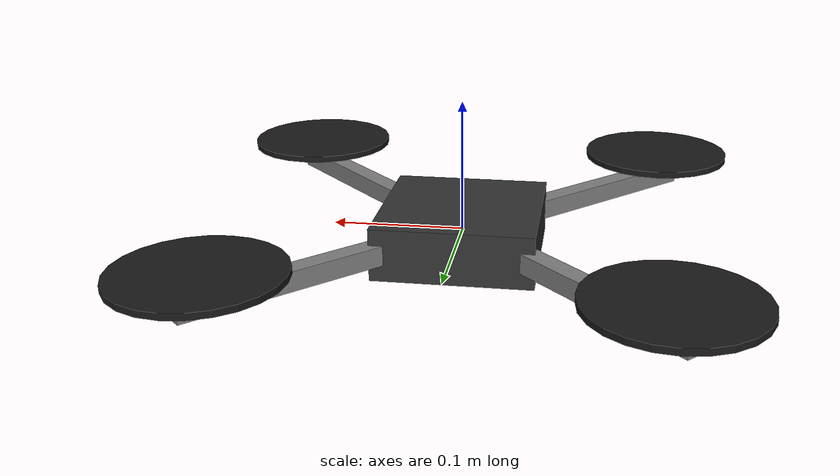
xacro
<?xml version="1.0"?>

<robot xmlns:xacro="http://www.ros.org/wiki/xacro" name="small_quadcopter">

   <!-- Params -->

    <!-- Body -->
    <xacro:property name="body_length" value="0.12"/>
    <xacro:property name="body_width"  value="0.12"/>
    <xacro:property name="body_height" value="0.04"/>
    <xacro:property name="body_mass"   value="0.40"/>

    <!-- Arms -->
    <xacro:property name="arm_length"    value="0.18"/>
    <xacro:property name="arm_width"     value="0.015"/>
    <xacro:property name="arm_height"    value="0.015"/>
    <xacro:property name="arm_offset"    value="0.1"/>

    <!-- Rotors -->
    <xacro:property name="rotor_radius"    value="0.06"/>
    <xacro:property name="rotor_thickness" value="0.005"/>
    <xacro:property name="rotor_offset"    value="0.15"/>

    <!-- Materials/Appearance -->

    <material name="body_color">
        <color rgba="0.2 0.2 0.2 1.0"/>
    </material>

    <material name="arm_color">
        <color rgba="0.5 0.5 0.5 1.0"/>
    </material>

    <material name="rotor_color">
        <color rgba="0.1 0.1 0.1 1.0"/>
    </material>

    <!-- Base Link -->

    <link name="base_link">

        <visual>
            <geometry>
                <box size="${body_length} ${body_width} ${body_height}"/>
            </geometry>

            <material name="body_color"/>
        </visual>

        <collision>
            <geometry>
                <box size="${body_length} ${body_width} ${body_height}"/>
            </geometry>
        </collision>

        <inertial>
            <mass value="${body_mass}"/>

            <inertia
                ixx="0.002"
                ixy="0.0"
                ixz="0.0"
                iyy="0.002"
                iyz="0.0"
                izz="0.003"/>
        </inertial>

    </link>

    <link name="imu"/>

    <joint name="base_link_to_imu" type="fixed">
        <parent link="base_link"/>
        <child link="imu"/>
        <origin xyz="0 0 0" rpy="${pi} 0 0"/>
    </joint>

    <!-- Arm Macro -->

    <xacro:macro name="arm" params="name x y yaw">

        <link name="${name}_arm">

            <visual>
                <geometry>
                    <box size="${arm_length} ${arm_width} ${arm_height}"/>
                </geometry>

                <material name="arm_color"/>
            </visual>

            <collision>
                <geometry>
                    <box size="${arm_length} ${arm_width} ${arm_height}"/>
                </geometry>
            </collision>

        </link>

        <joint name="${name}_arm_joint" type="fixed">

            <parent link="base_link"/>
            <child link="${name}_arm"/>

            <origin
                xyz="${x} ${y} 0"
                rpy="0 0 ${yaw}"/>

        </joint>

    </xacro:macro>

    <!-- Rotor Macro -->

    <xacro:macro name="rotor" params="name x y">

        <link name="${name}_rotor">

            <visual>
                <geometry>
                    <cylinder
                        radius="${rotor_radius}"
                        length="${rotor_thickness}"/>
                </geometry>

                <material name="rotor_color"/>
            </visual>

            <collision>
                <geometry>
                    <cylinder
                        radius="${rotor_radius}"
                        length="${rotor_thickness}"/>
                </geometry>
            </collision>

        </link>

        <joint name="${name}_rotor_joint" type="continuous">

            <parent link="base_link"/>
            <child link="${name}_rotor"/>

            <origin
                xyz="${x} ${y} ${body_height / 2}"
                rpy="0 0 0"/>

            <axis xyz="0 0 1"/>

        </joint>

    </xacro:macro>

    <!-- Initialize 4 arms -->

    <xacro:arm
        name="front_left"
        x="${arm_offset}"
        y="${arm_offset}"
        yaw="${pi / 4}"/>

    <xacro:arm
        name="front_right"
        x="${arm_offset}"
        y="${-arm_offset}"
        yaw="${-pi / 4}"/>

    <xacro:arm
        name="rear_left"
        x="${-arm_offset}"
        y="${arm_offset}"
        yaw="${-pi / 4}"/>

    <xacro:arm
        name="rear_right"
        x="${-arm_offset}"
        y="${-arm_offset}"
        yaw="${pi / 4}"/>

    <!-- Initialize 4 rotors -->

    <xacro:rotor
        name="front_left"
        x="${rotor_offset}"
        y="${rotor_offset}"/>

    <xacro:rotor
        name="front_right"
        x="${rotor_offset}"
        y="${-rotor_offset}"/>

    <xacro:rotor
        name="rear_left"
        x="${-rotor_offset}"
        y="${rotor_offset}"/>

    <xacro:rotor
        name="rear_right"
        x="${-rotor_offset}"
        y="${-rotor_offset}"/>

</robot>
